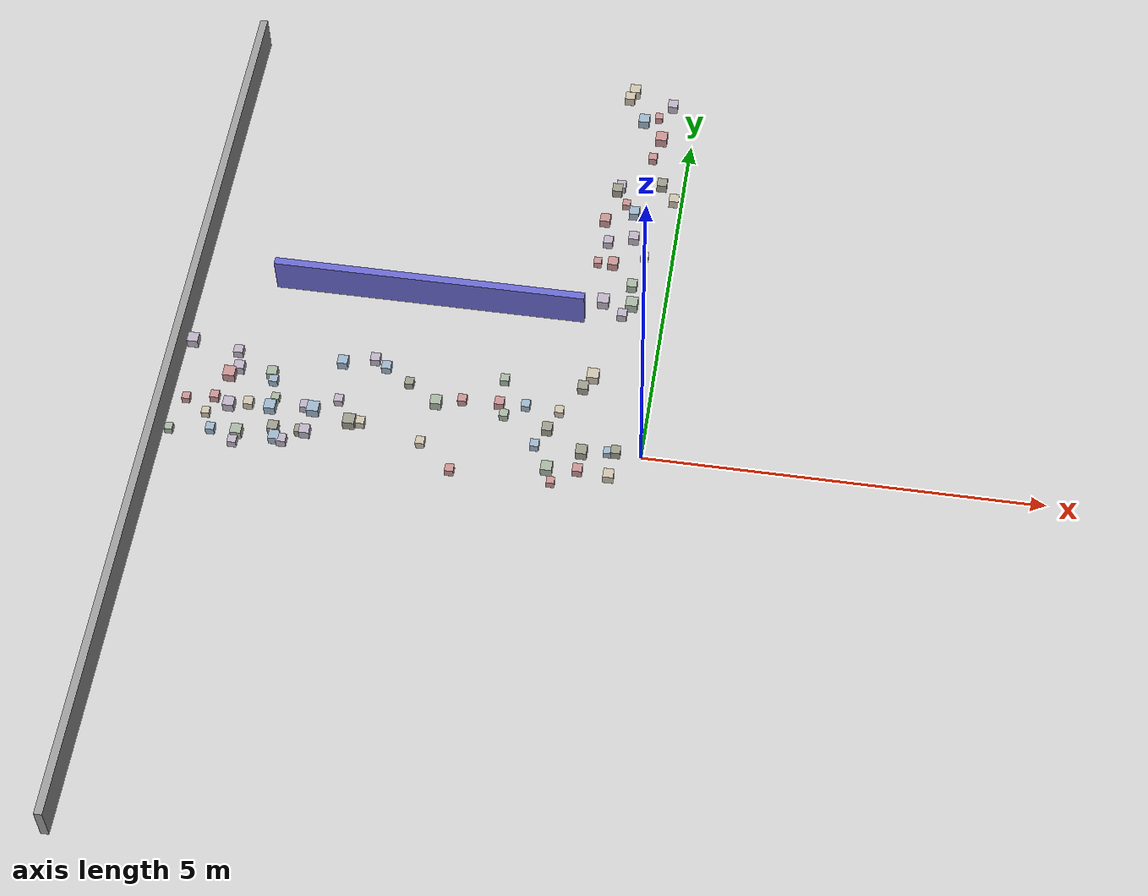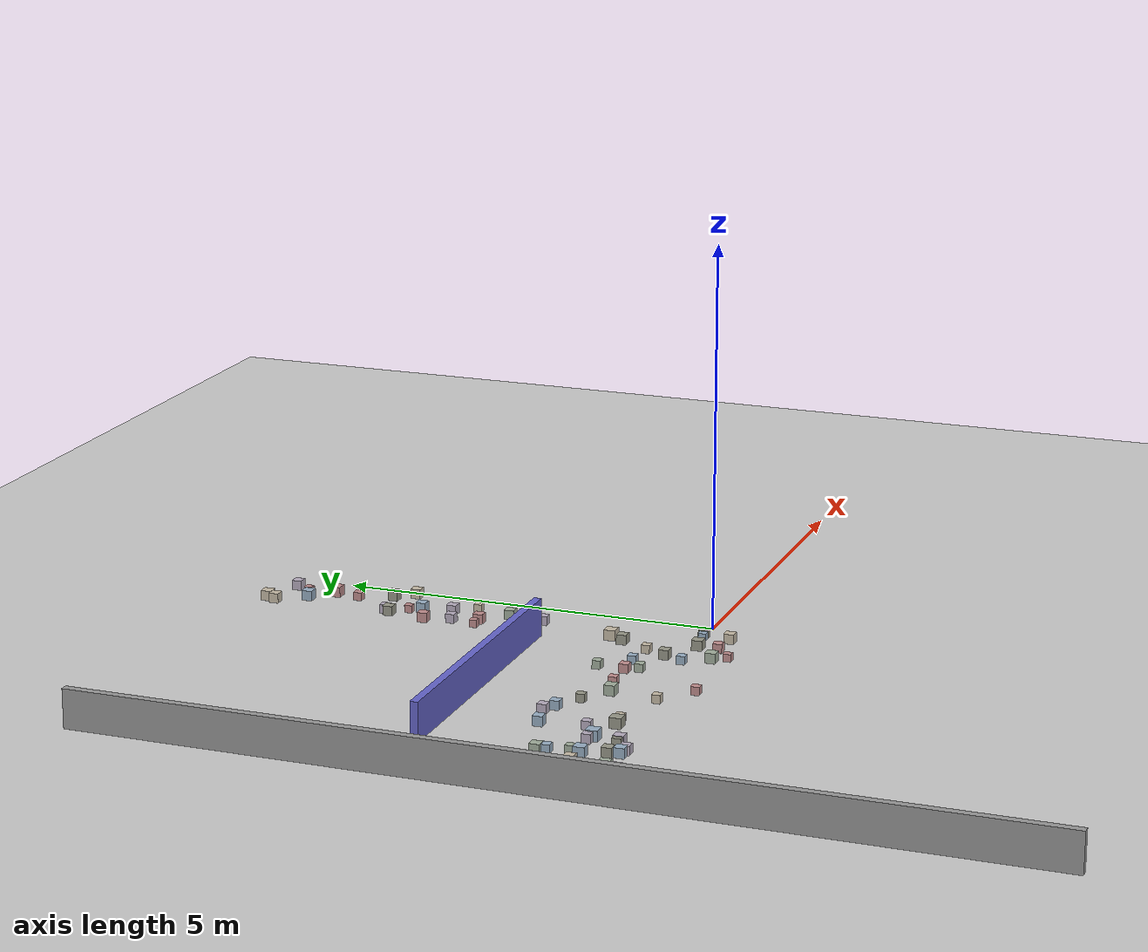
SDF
<sdf version="1.6">
 <world name="small_maze_world">
  <include><uri>model://ground_plane</uri></include>
  <include><uri>model://sun</uri></include>
  <model name="wall_west">
   <static>true</static>
   <pose>-6 0 0.25 0 0 0</pose>
   <link name="link">
    <collision name="collision"><geometry><box><size>0.1 12 0.5</size></box></geometry></collision>
    <visual name="visual">
     <geometry><box><size>0.1 12 0.5</size></box></geometry>
     <material><ambient>0.6 0.6 0.6 1</ambient></material>
    </visual>
   </link>
  </model>
  <model name="maze_wall_1">
   <static>true</static>
   <pose>-3 2 0.25 0 0 0</pose>
   <link name="link">
    <collision name="collision"><geometry><box><size>4 0.1 0.5</size></box></geometry></collision>
    <visual name="visual">
     <geometry><box><size>4 0.1 0.5</size></box></geometry>
     <material><ambient>0.4 0.4 0.8 1</ambient></material>
    </visual>
   </link>
  </model>
  <model name="box_1">
   <static>false</static>
   <pose>-0.76 2.9 0.05 0 0 0</pose>
   <link name="link">
    <inertial>
     <mass>0.2</mass>
     <inertia><ixx>0.001</ixx><iyy>0.001</iyy><izz>0.001</izz><ixy>0</ixy><ixz>0</ixz><iyz>0</iyz></inertia>
    </inertial>
    <collision name="collision"><geometry><box><size>0.13 0.13 0.13</size></box></geometry></collision>
    <visual name="visual">
     <geometry><box><size>0.13 0.13 0.13</size></box></geometry>
     <material><ambient>0.76 0.56 0.56 1</ambient><diffuse>0.76 0.56 0.56 1</diffuse></material>
    </visual>
   </link>
  </model>
  <model name="box_5">
   <static>false</static>
   <pose>-5.21 0.04 0.05 0 0 0</pose>
   <link name="link">
    <inertial>
     <mass>0.2</mass>
     <inertia><ixx>0.001</ixx><iyy>0.001</iyy><izz>0.001</izz><ixy>0</ixy><ixz>0</ixz><iyz>0</iyz></inertia>
    </inertial>
    <collision name="collision"><geometry><box><size>0.14 0.14 0.14</size></box></geometry></collision>
    <visual name="visual">
     <geometry><box><size>0.14 0.14 0.14</size></box></geometry>
     <material><ambient>0.72 0.68 0.75 1</ambient><diffuse>0.72 0.68 0.75 1</diffuse></material>
    </visual>
   </link>
  </model>
  <model name="box_6">
   <static>false</static>
   <pose>-0.36 -0.35 0.05 0 0 0</pose>
   <link name="link">
    <inertial>
     <mass>0.2</mass>
     <inertia><ixx>0.001</ixx><iyy>0.001</iyy><izz>0.001</izz><ixy>0</ixy><ixz>0</ixz><iyz>0</iyz></inertia>
    </inertial>
    <collision name="collision"><geometry><box><size>0.13 0.13 0.13</size></box></geometry></collision>
    <visual name="visual">
     <geometry><box><size>0.13 0.13 0.13</size></box></geometry>
     <material><ambient>0.78 0.74 0.66 1</ambient><diffuse>0.78 0.74 0.66 1</diffuse></material>
    </visual>
   </link>
  </model>
  <model name="box_17">
   <static>false</static>
   <pose>-1.85 0.89 0.05 0 0 0</pose>
   <link name="link">
    <inertial>
     <mass>0.2</mass>
     <inertia><ixx>0.001</ixx><iyy>0.001</iyy><izz>0.001</izz><ixy>0</ixy><ixz>0</ixz><iyz>0</iyz></inertia>
    </inertial>
    <collision name="collision"><geometry><box><size>0.11 0.11 0.11</size></box></geometry></collision>
    <visual name="visual">
     <geometry><box><size>0.11 0.11 0.11</size></box></geometry>
     <material><ambient>0.64 0.69 0.62 1</ambient><diffuse>0.64 0.69 0.62 1</diffuse></material>
    </visual>
   </link>
  </model>
  <model name="box_18">
   <static>false</static>
   <pose>-0.42 -0.01 0.05 0 0 0</pose>
   <link name="link">
    <inertial>
     <mass>0.2</mass>
     <inertia><ixx>0.001</ixx><iyy>0.001</iyy><izz>0.001</izz><ixy>0</ixy><ixz>0</ixz><iyz>0</iyz></inertia>
    </inertial>
    <collision name="collision"><geometry><box><size>0.1 0.1 0.1</size></box></geometry></collision>
    <visual name="visual">
     <geometry><box><size>0.1 0.1 0.1</size></box></geometry>
     <material><ambient>0.6 0.69 0.77 1</ambient><diffuse>0.6 0.69 0.77 1</diffuse></material>
    </visual>
   </link>
  </model>
  <model name="box_28">
   <static>false</static>
   <pose>-0.87 5.84 0.05 0 0 0</pose>
   <link name="link">
    <inertial>
     <mass>0.2</mass>
     <inertia><ixx>0.001</ixx><iyy>0.001</iyy><izz>0.001</izz><ixy>0</ixy><ixz>0</ixz><iyz>0</iyz></inertia>
    </inertial>
    <collision name="collision"><geometry><box><size>0.14 0.14 0.14</size></box></geometry></collision>
    <visual name="visual">
     <geometry><box><size>0.14 0.14 0.14</size></box></geometry>
     <material><ambient>0.78 0.74 0.66 1</ambient><diffuse>0.78 0.74 0.66 1</diffuse></material>
    </visual>
   </link>
  </model>
  <model name="box_30">
   <static>false</static>
   <pose>-4.26 0.14 0.05 0 0 0</pose>
   <link name="link">
    <inertial>
     <mass>0.2</mass>
     <inertia><ixx>0.001</ixx><iyy>0.001</iyy><izz>0.001</izz><ixy>0</ixy><ixz>0</ixz><iyz>0</iyz></inertia>
    </inertial>
    <collision name="collision"><geometry><box><size>0.12 0.12 0.12</size></box></geometry></collision>
    <visual name="visual">
     <geometry><box><size>0.12 0.12 0.12</size></box></geometry>
     <material><ambient>0.72 0.68 0.75 1</ambient><diffuse>0.72 0.68 0.75 1</diffuse></material>
    </visual>
   </link>
  </model>
  <model name="box_36">
   <static>false</static>
   <pose>-5.26 0.85 0.05 0 0 0</pose>
   <link name="link">
    <inertial>
     <mass>0.2</mass>
     <inertia><ixx>0.001</ixx><iyy>0.001</iyy><izz>0.001</izz><ixy>0</ixy><ixz>0</ixz><iyz>0</iyz></inertia>
    </inertial>
    <collision name="collision"><geometry><box><size>0.12 0.12 0.12</size></box></geometry></collision>
    <visual name="visual">
     <geometry><box><size>0.12 0.12 0.12</size></box></geometry>
     <material><ambient>0.72 0.68 0.75 1</ambient><diffuse>0.72 0.68 0.75 1</diffuse></material>
    </visual>
   </link>
  </model>
  <model name="box_42">
   <static>false</static>
   <pose>-5.03 -0.35 0.05 0 0 0</pose>
   <link name="link">
    <inertial>
     <mass>0.2</mass>
     <inertia><ixx>0.001</ixx><iyy>0.001</iyy><izz>0.001</izz><ixy>0</ixy><ixz>0</ixz><iyz>0</iyz></inertia>
    </inertial>
    <collision name="collision"><geometry><box><size>0.14 0.14 0.14</size></box></geometry></collision>
    <visual name="visual">
     <geometry><box><size>0.14 0.14 0.14</size></box></geometry>
     <material><ambient>0.64 0.69 0.62 1</ambient><diffuse>0.64 0.69 0.62 1</diffuse></material>
    </visual>
   </link>
  </model>
  <model name="box_43">
   <static>false</static>
   <pose>-0.48 4.71 0.05 0 0 0</pose>
   <link name="link">
    <inertial>
     <mass>0.2</mass>
     <inertia><ixx>0.001</ixx><iyy>0.001</iyy><izz>0.001</izz><ixy>0</ixy><ixz>0</ixz><iyz>0</iyz></inertia>
    </inertial>
    <collision name="collision"><geometry><box><size>0.11 0.11 0.11</size></box></geometry></collision>
    <visual name="visual">
     <geometry><box><size>0.11 0.11 0.11</size></box></geometry>
     <material><ambient>0.76 0.56 0.56 1</ambient><diffuse>0.76 0.56 0.56 1</diffuse></material>
    </visual>
   </link>
  </model>
  <model name="box_51">
   <static>false</static>
   <pose>-4.97 0.09 0.05 0 0 0</pose>
   <link name="link">
    <inertial>
     <mass>0.2</mass>
     <inertia><ixx>0.001</ixx><iyy>0.001</iyy><izz>0.001</izz><ixy>0</ixy><ixz>0</ixz><iyz>0</iyz></inertia>
    </inertial>
    <collision name="collision"><geometry><box><size>0.12 0.12 0.12</size></box></geometry></collision>
    <visual name="visual">
     <geometry><box><size>0.12 0.12 0.12</size></box></geometry>
     <material><ambient>0.78 0.74 0.66 1</ambient><diffuse>0.78 0.74 0.66 1</diffuse></material>
    </visual>
   </link>
  </model>
  <model name="box_52">
   <static>false</static>
   <pose>-1.78 0.36 0.05 0 0 0</pose>
   <link name="link">
    <inertial>
     <mass>0.2</mass>
     <inertia><ixx>0.001</ixx><iyy>0.001</iyy><izz>0.001</izz><ixy>0</ixy><ixz>0</ixz><iyz>0</iyz></inertia>
    </inertial>
    <collision name="collision"><geometry><box><size>0.11 0.11 0.11</size></box></geometry></collision>
    <visual name="visual">
     <geometry><box><size>0.11 0.11 0.11</size></box></geometry>
     <material><ambient>0.64 0.69 0.62 1</ambient><diffuse>0.64 0.69 0.62 1</diffuse></material>
    </visual>
   </link>
  </model>
  <model name="box_58">
   <static>false</static>
   <pose>-3.03 0.67 0.05 0 0 0</pose>
   <link name="link">
    <inertial>
     <mass>0.2</mass>
     <inertia><ixx>0.001</ixx><iyy>0.001</iyy><izz>0.001</izz><ixy>0</ixy><ixz>0</ixz><iyz>0</iyz></inertia>
    </inertial>
    <collision name="collision"><geometry><box><size>0.11 0.11 0.11</size></box></geometry></collision>
    <visual name="visual">
     <geometry><box><size>0.11 0.11 0.11</size></box></geometry>
     <material><ambient>0.6 0.6 0.54 1</ambient><diffuse>0.6 0.6 0.54 1</diffuse></material>
    </visual>
   </link>
  </model>
  <model name="box_62">
   <static>false</static>
   <pose>-5.87 -0.42 0.05 0 0 0</pose>
   <link name="link">
    <inertial>
     <mass>0.2</mass>
     <inertia><ixx>0.001</ixx><iyy>0.001</iyy><izz>0.001</izz><ixy>0</ixy><ixz>0</ixz><iyz>0</iyz></inertia>
    </inertial>
    <collision name="collision"><geometry><box><size>0.1 0.1 0.1</size></box></geometry></collision>
    <visual name="visual">
     <geometry><box><size>0.1 0.1 0.1</size></box></geometry>
     <material><ambient>0.64 0.69 0.62 1</ambient><diffuse>0.64 0.69 0.62 1</diffuse></material>
    </visual>
   </link>
  </model>
  <model name="box_69">
   <static>false</static>
   <pose>-4.77 0.58 0.05 0 0 0</pose>
   <link name="link">
    <inertial>
     <mass>0.2</mass>
     <inertia><ixx>0.001</ixx><iyy>0.001</iyy><izz>0.001</izz><ixy>0</ixy><ixz>0</ixz><iyz>0</iyz></inertia>
    </inertial>
    <collision name="collision"><geometry><box><size>0.13 0.13 0.13</size></box></geometry></collision>
    <visual name="visual">
     <geometry><box><size>0.13 0.13 0.13</size></box></geometry>
     <material><ambient>0.64 0.69 0.62 1</ambient><diffuse>0.64 0.69 0.62 1</diffuse></material>
    </visual>
   </link>
  </model>
  <model name="box_72">
   <static>false</static>
   <pose>-3.52 0.97 0.05 0 0 0</pose>
   <link name="link">
    <inertial>
     <mass>0.2</mass>
     <inertia><ixx>0.001</ixx><iyy>0.001</iyy><izz>0.001</izz><ixy>0</ixy><ixz>0</ixz><iyz>0</iyz></inertia>
    </inertial>
    <collision name="collision"><geometry><box><size>0.12 0.12 0.12</size></box></geometry></collision>
    <visual name="visual">
     <geometry><box><size>0.12 0.12 0.12</size></box></geometry>
     <material><ambient>0.72 0.68 0.75 1</ambient><diffuse>0.72 0.68 0.75 1</diffuse></material>
    </visual>
   </link>
  </model>
  <model name="box_74">
   <static>false</static>
   <pose>-3.86 0.29 0.05 0 0 0</pose>
   <link name="link">
    <inertial>
     <mass>0.2</mass>
     <inertia><ixx>0.001</ixx><iyy>0.001</iyy><izz>0.001</izz><ixy>0</ixy><ixz>0</ixz><iyz>0</iyz></inertia>
    </inertial>
    <collision name="collision"><geometry><box><size>0.11 0.11 0.11</size></box></geometry></collision>
    <visual name="visual">
     <geometry><box><size>0.11 0.11 0.11</size></box></geometry>
     <material><ambient>0.72 0.68 0.75 1</ambient><diffuse>0.72 0.68 0.75 1</diffuse></material>
    </visual>
   </link>
  </model>
  <model name="box_78">
   <static>false</static>
   <pose>-0.72 3.89 0.05 0 0 0</pose>
   <link name="link">
    <inertial>
     <mass>0.2</mass>
     <inertia><ixx>0.001</ixx><iyy>0.001</iyy><izz>0.001</izz><ixy>0</ixy><ixz>0</ixz><iyz>0</iyz></inertia>
    </inertial>
    <collision name="collision"><geometry><box><size>0.1 0.1 0.1</size></box></geometry></collision>
    <visual name="visual">
     <geometry><box><size>0.1 0.1 0.1</size></box></geometry>
     <material><ambient>0.76 0.56 0.56 1</ambient><diffuse>0.76 0.56 0.56 1</diffuse></material>
    </visual>
   </link>
  </model>
  <model name="box_81">
   <static>false</static>
   <pose>-0.68 5.34 0.05 0 0 0</pose>
   <link name="link">
    <inertial>
     <mass>0.2</mass>
     <inertia><ixx>0.001</ixx><iyy>0.001</iyy><izz>0.001</izz><ixy>0</ixy><ixz>0</ixz><iyz>0</iyz></inertia>
    </inertial>
    <collision name="collision"><geometry><box><size>0.14 0.14 0.14</size></box></geometry></collision>
    <visual name="visual">
     <geometry><box><size>0.14 0.14 0.14</size></box></geometry>
     <material><ambient>0.6 0.69 0.77 1</ambient><diffuse>0.6 0.69 0.77 1</diffuse></material>
    </visual>
   </link>
  </model>
  <model name="box_85">
   <static>false</static>
   <pose>-0.86 0.91 0.05 0 0 0</pose>
   <link name="link">
    <inertial>
     <mass>0.2</mass>
     <inertia><ixx>0.001</ixx><iyy>0.001</iyy><izz>0.001</izz><ixy>0</ixy><ixz>0</ixz><iyz>0</iyz></inertia>
    </inertial>
    <collision name="collision"><geometry><box><size>0.13 0.13 0.13</size></box></geometry></collision>
    <visual name="visual">
     <geometry><box><size>0.13 0.13 0.13</size></box></geometry>
     <material><ambient>0.6 0.6 0.54 1</ambient><diffuse>0.6 0.6 0.54 1</diffuse></material>
    </visual>
   </link>
  </model>
  <model name="box_89">
   <static>false</static>
   <pose>-0.92 5.71 0.05 0 0 0</pose>
   <link name="link">
    <inertial>
     <mass>0.2</mass>
     <inertia><ixx>0.001</ixx><iyy>0.001</iyy><izz>0.001</izz><ixy>0</ixy><ixz>0</ixz><iyz>0</iyz></inertia>
    </inertial>
    <collision name="collision"><geometry><box><size>0.13 0.13 0.13</size></box></geometry></collision>
    <visual name="visual">
     <geometry><box><size>0.13 0.13 0.13</size></box></geometry>
     <material><ambient>0.78 0.74 0.66 1</ambient><diffuse>0.78 0.74 0.66 1</diffuse></material>
    </visual>
   </link>
  </model>
  <model name="box_94">
   <static>false</static>
   <pose>-0.11 4.04 0.05 0 0 0</pose>
   <link name="link">
    <inertial>
     <mass>0.2</mass>
     <inertia><ixx>0.001</ixx><iyy>0.001</iyy><izz>0.001</izz><ixy>0</ixy><ixz>0</ixz><iyz>0</iyz></inertia>
    </inertial>
    <collision name="collision"><geometry><box><size>0.13 0.13 0.13</size></box></geometry></collision>
    <visual name="visual">
     <geometry><box><size>0.13 0.13 0.13</size></box></geometry>
     <material><ambient>0.78 0.74 0.66 1</ambient><diffuse>0.78 0.74 0.66 1</diffuse></material>
    </visual>
   </link>
  </model>
  <model name="box_96">
   <static>false</static>
   <pose>-3.53 -0.0 0.05 0 0 0</pose>
   <link name="link">
    <inertial>
     <mass>0.2</mass>
     <inertia><ixx>0.001</ixx><iyy>0.001</iyy><izz>0.001</izz><ixy>0</ixy><ixz>0</ixz><iyz>0</iyz></inertia>
    </inertial>
    <collision name="collision"><geometry><box><size>0.11 0.11 0.11</size></box></geometry></collision>
    <visual name="visual">
     <geometry><box><size>0.11 0.11 0.11</size></box></geometry>
     <material><ambient>0.78 0.74 0.66 1</ambient><diffuse>0.78 0.74 0.66 1</diffuse></material>
    </visual>
   </link>
  </model>
  <model name="box_100">
   <static>false</static>
   <pose>-2.31 -0.54 0.05 0 0 0</pose>
   <link name="link">
    <inertial>
     <mass>0.2</mass>
     <inertia><ixx>0.001</ixx><iyy>0.001</iyy><izz>0.001</izz><ixy>0</ixy><ixz>0</ixz><iyz>0</iyz></inertia>
    </inertial>
    <collision name="collision"><geometry><box><size>0.11 0.11 0.11</size></box></geometry></collision>
    <visual name="visual">
     <geometry><box><size>0.11 0.11 0.11</size></box></geometry>
     <material><ambient>0.76 0.56 0.56 1</ambient><diffuse>0.76 0.56 0.56 1</diffuse></material>
    </visual>
   </link>
  </model>
  <model name="box_102">
   <static>false</static>
   <pose>-3.92 0.87 0.05 0 0 0</pose>
   <link name="link">
    <inertial>
     <mass>0.2</mass>
     <inertia><ixx>0.001</ixx><iyy>0.001</iyy><izz>0.001</izz><ixy>0</ixy><ixz>0</ixz><iyz>0</iyz></inertia>
    </inertial>
    <collision name="collision"><geometry><box><size>0.13 0.13 0.13</size></box></geometry></collision>
    <visual name="visual">
     <geometry><box><size>0.13 0.13 0.13</size></box></geometry>
     <material><ambient>0.6 0.69 0.77 1</ambient><diffuse>0.6 0.69 0.77 1</diffuse></material>
    </visual>
   </link>
  </model>
  <model name="box_104">
   <static>false</static>
   <pose>-0.43 2.28 0.05 0 0 0</pose>
   <link name="link">
    <inertial>
     <mass>0.2</mass>
     <inertia><ixx>0.001</ixx><iyy>0.001</iyy><izz>0.001</izz><ixy>0</ixy><ixz>0</ixz><iyz>0</iyz></inertia>
    </inertial>
    <collision name="collision"><geometry><box><size>0.15 0.15 0.15</size></box></geometry></collision>
    <visual name="visual">
     <geometry><box><size>0.15 0.15 0.15</size></box></geometry>
     <material><ambient>0.64 0.69 0.62 1</ambient><diffuse>0.64 0.69 0.62 1</diffuse></material>
    </visual>
   </link>
  </model>
  <model name="box_113">
   <static>false</static>
   <pose>-0.55 3.35 0.05 0 0 0</pose>
   <link name="link">
    <inertial>
     <mass>0.2</mass>
     <inertia><ixx>0.001</ixx><iyy>0.001</iyy><izz>0.001</izz><ixy>0</ixy><ixz>0</ixz><iyz>0</iyz></inertia>
    </inertial>
    <collision name="collision"><geometry><box><size>0.13 0.13 0.13</size></box></geometry></collision>
    <visual name="visual">
     <geometry><box><size>0.13 0.13 0.13</size></box></geometry>
     <material><ambient>0.72 0.68 0.75 1</ambient><diffuse>0.72 0.68 0.75 1</diffuse></material>
    </visual>
   </link>
  </model>
  <model name="box_114">
   <static>false</static>
   <pose>-5.3 0.49 0.05 0 0 0</pose>
   <link name="link">
    <inertial>
     <mass>0.2</mass>
     <inertia><ixx>0.001</ixx><iyy>0.001</iyy><izz>0.001</izz><ixy>0</ixy><ixz>0</ixz><iyz>0</iyz></inertia>
    </inertial>
    <collision name="collision"><geometry><box><size>0.15 0.15 0.15</size></box></geometry></collision>
    <visual name="visual">
     <geometry><box><size>0.15 0.15 0.15</size></box></geometry>
     <material><ambient>0.76 0.56 0.56 1</ambient><diffuse>0.76 0.56 0.56 1</diffuse></material>
    </visual>
   </link>
  </model>
  <model name="box_120">
   <static>false</static>
   <pose>-0.87 4.11 0.05 0 0 0</pose>
   <link name="link">
    <inertial>
     <mass>0.2</mass>
     <inertia><ixx>0.001</ixx><iyy>0.001</iyy><izz>0.001</izz><ixy>0</ixy><ixz>0</ixz><iyz>0</iyz></inertia>
    </inertial>
    <collision name="collision"><geometry><box><size>0.13 0.13 0.13</size></box></geometry></collision>
    <visual name="visual">
     <geometry><box><size>0.13 0.13 0.13</size></box></geometry>
     <material><ambient>0.6 0.6 0.54 1</ambient><diffuse>0.6 0.6 0.54 1</diffuse></material>
    </visual>
   </link>
  </model>
  <model name="box_137">
   <static>false</static>
   <pose>-0.8 2.28 0.05 0 0 0</pose>
   <link name="link">
    <inertial>
     <mass>0.2</mass>
     <inertia><ixx>0.001</ixx><iyy>0.001</iyy><izz>0.001</izz><ixy>0</ixy><ixz>0</ixz><iyz>0</iyz></inertia>
    </inertial>
    <collision name="collision"><geometry><box><size>0.15 0.15 0.15</size></box></geometry></collision>
    <visual name="visual">
     <geometry><box><size>0.15 0.15 0.15</size></box></geometry>
     <material><ambient>0.72 0.68 0.75 1</ambient><diffuse>0.72 0.68 0.75 1</diffuse></material>
    </visual>
   </link>
  </model>
  <model name="box_142">
   <static>false</static>
   <pose>-0.53 2.1 0.05 0 0 0</pose>
   <link name="link">
    <inertial>
     <mass>0.2</mass>
     <inertia><ixx>0.001</ixx><iyy>0.001</iyy><izz>0.001</izz><ixy>0</ixy><ixz>0</ixz><iyz>0</iyz></inertia>
    </inertial>
    <collision name="collision"><geometry><box><size>0.12 0.12 0.12</size></box></geometry></collision>
    <visual name="visual">
     <geometry><box><size>0.12 0.12 0.12</size></box></geometry>
     <material><ambient>0.72 0.68 0.75 1</ambient><diffuse>0.72 0.68 0.75 1</diffuse></material>
    </visual>
   </link>
  </model>
  <model name="box_146">
   <static>false</static>
   <pose>-4.45 -0.4 0.05 0 0 0</pose>
   <link name="link">
    <inertial>
     <mass>0.2</mass>
     <inertia><ixx>0.001</ixx><iyy>0.001</iyy><izz>0.001</izz><ixy>0</ixy><ixz>0</ixz><iyz>0</iyz></inertia>
    </inertial>
    <collision name="collision"><geometry><box><size>0.12 0.12 0.12</size></box></geometry></collision>
    <visual name="visual">
     <geometry><box><size>0.12 0.12 0.12</size></box></geometry>
     <material><ambient>0.72 0.68 0.75 1</ambient><diffuse>0.72 0.68 0.75 1</diffuse></material>
    </visual>
   </link>
  </model>
  <model name="box_152">
   <static>false</static>
   <pose>-1.53 0.54 0.05 0 0 0</pose>
   <link name="link">
    <inertial>
     <mass>0.2</mass>
     <inertia><ixx>0.001</ixx><iyy>0.001</iyy><izz>0.001</izz><ixy>0</ixy><ixz>0</ixz><iyz>0</iyz></inertia>
    </inertial>
    <collision name="collision"><geometry><box><size>0.11 0.11 0.11</size></box></geometry></collision>
    <visual name="visual">
     <geometry><box><size>0.11 0.11 0.11</size></box></geometry>
     <material><ambient>0.6 0.69 0.77 1</ambient><diffuse>0.6 0.69 0.77 1</diffuse></material>
    </visual>
   </link>
  </model>
  <model name="box_155">
   <static>false</static>
   <pose>-5.36 -0.35 0.05 0 0 0</pose>
   <link name="link">
    <inertial>
     <mass>0.2</mass>
     <inertia><ixx>0.001</ixx><iyy>0.001</iyy><izz>0.001</izz><ixy>0</ixy><ixz>0</ixz><iyz>0</iyz></inertia>
    </inertial>
    <collision name="collision"><geometry><box><size>0.11 0.11 0.11</size></box></geometry></collision>
    <visual name="visual">
     <geometry><box><size>0.11 0.11 0.11</size></box></geometry>
     <material><ambient>0.6 0.69 0.77 1</ambient><diffuse>0.6 0.69 0.77 1</diffuse></material>
    </visual>
   </link>
  </model>
  <model name="box_172">
   <static>false</static>
   <pose>-5.47 -0.12 0.05 0 0 0</pose>
   <link name="link">
    <inertial>
     <mass>0.2</mass>
     <inertia><ixx>0.001</ixx><iyy>0.001</iyy><izz>0.001</izz><ixy>0</ixy><ixz>0</ixz><iyz>0</iyz></inertia>
    </inertial>
    <collision name="collision"><geometry><box><size>0.1 0.1 0.1</size></box></geometry></collision>
    <visual name="visual">
     <geometry><box><size>0.1 0.1 0.1</size></box></geometry>
     <material><ambient>0.78 0.74 0.66 1</ambient><diffuse>0.78 0.74 0.66 1</diffuse></material>
    </visual>
   </link>
  </model>
  <model name="box_183">
   <static>false</static>
   <pose>-5.87 0.94 0.05 0 0 0</pose>
   <link name="link">
    <inertial>
     <mass>0.2</mass>
     <inertia><ixx>0.001</ixx><iyy>0.001</iyy><izz>0.001</izz><ixy>0</ixy><ixz>0</ixz><iyz>0</iyz></inertia>
    </inertial>
    <collision name="collision"><geometry><box><size>0.14 0.14 0.14</size></box></geometry></collision>
    <visual name="visual">
     <geometry><box><size>0.14 0.14 0.14</size></box></geometry>
     <material><ambient>0.72 0.68 0.75 1</ambient><diffuse>0.72 0.68 0.75 1</diffuse></material>
    </visual>
   </link>
  </model>
  <model name="box_186">
   <static>false</static>
   <pose>-0.37 3.06 0.05 0 0 0</pose>
   <link name="link">
    <inertial>
     <mass>0.2</mass>
     <inertia><ixx>0.001</ixx><iyy>0.001</iyy><izz>0.001</izz><ixy>0</ixy><ixz>0</ixz><iyz>0</iyz></inertia>
    </inertial>
    <collision name="collision"><geometry><box><size>0.1 0.1 0.1</size></box></geometry></collision>
    <visual name="visual">
     <geometry><box><size>0.1 0.1 0.1</size></box></geometry>
     <material><ambient>0.78 0.74 0.66 1</ambient><diffuse>0.78 0.74 0.66 1</diffuse></material>
    </visual>
   </link>
  </model>
  <model name="box_188">
   <static>false</static>
   <pose>-1.21 0.23 0.05 0 0 0</pose>
   <link name="link">
    <inertial>
     <mass>0.2</mass>
     <inertia><ixx>0.001</ixx><iyy>0.001</iyy><izz>0.001</izz><ixy>0</ixy><ixz>0</ixz><iyz>0</iyz></inertia>
    </inertial>
    <collision name="collision"><geometry><box><size>0.13 0.13 0.13</size></box></geometry></collision>
    <visual name="visual">
     <geometry><box><size>0.13 0.13 0.13</size></box></geometry>
     <material><ambient>0.6 0.6 0.54 1</ambient><diffuse>0.6 0.6 0.54 1</diffuse></material>
    </visual>
   </link>
  </model>
  <model name="box_189">
   <static>false</static>
   <pose>-5.41 0.13 0.05 0 0 0</pose>
   <link name="link">
    <inertial>
     <mass>0.2</mass>
     <inertia><ixx>0.001</ixx><iyy>0.001</iyy><izz>0.001</izz><ixy>0</ixy><ixz>0</ixz><iyz>0</iyz></inertia>
    </inertial>
    <collision name="collision"><geometry><box><size>0.11 0.11 0.11</size></box></geometry></collision>
    <visual name="visual">
     <geometry><box><size>0.11 0.11 0.11</size></box></geometry>
     <material><ambient>0.76 0.56 0.56 1</ambient><diffuse>0.76 0.56 0.56 1</diffuse></material>
    </visual>
   </link>
  </model>
  <model name="box_192">
   <static>false</static>
   <pose>-1.05 -0.54 0.05 0 0 0</pose>
   <link name="link">
    <inertial>
     <mass>0.2</mass>
     <inertia><ixx>0.001</ixx><iyy>0.001</iyy><izz>0.001</izz><ixy>0</ixy><ixz>0</ixz><iyz>0</iyz></inertia>
    </inertial>
    <collision name="collision"><geometry><box><size>0.1 0.1 0.1</size></box></geometry></collision>
    <visual name="visual">
     <geometry><box><size>0.1 0.1 0.1</size></box></geometry>
     <material><ambient>0.76 0.56 0.56 1</ambient><diffuse>0.76 0.56 0.56 1</diffuse></material>
    </visual>
   </link>
  </model>
  <model name="box_203">
   <static>false</static>
   <pose>-0.74 -0.05 0.05 0 0 0</pose>
   <link name="link">
    <inertial>
     <mass>0.2</mass>
     <inertia><ixx>0.001</ixx><iyy>0.001</iyy><izz>0.001</izz><ixy>0</ixy><ixz>0</ixz><iyz>0</iyz></inertia>
    </inertial>
    <collision name="collision"><geometry><box><size>0.14 0.14 0.14</size></box></geometry></collision>
    <visual name="visual">
     <geometry><box><size>0.14 0.14 0.14</size></box></geometry>
     <material><ambient>0.6 0.6 0.54 1</ambient><diffuse>0.6 0.6 0.54 1</diffuse></material>
    </visual>
   </link>
  </model>
  <model name="box_206">
   <static>false</static>
   <pose>-0.6 3.76 0.05 0 0 0</pose>
   <link name="link">
    <inertial>
     <mass>0.2</mass>
     <inertia><ixx>0.001</ixx><iyy>0.001</iyy><izz>0.001</izz><ixy>0</ixy><ixz>0</ixz><iyz>0</iyz></inertia>
    </inertial>
    <collision name="collision"><geometry><box><size>0.13 0.13 0.13</size></box></geometry></collision>
    <visual name="visual">
     <geometry><box><size>0.13 0.13 0.13</size></box></geometry>
     <material><ambient>0.6 0.69 0.77 1</ambient><diffuse>0.6 0.69 0.77 1</diffuse></material>
    </visual>
   </link>
  </model>
  <model name="box_210">
   <static>false</static>
   <pose>-2.33 0.51 0.05 0 0 0</pose>
   <link name="link">
    <inertial>
     <mass>0.2</mass>
     <inertia><ixx>0.001</ixx><iyy>0.001</iyy><izz>0.001</izz><ixy>0</ixy><ixz>0</ixz><iyz>0</iyz></inertia>
    </inertial>
    <collision name="collision"><geometry><box><size>0.11 0.11 0.11</size></box></geometry></collision>
    <visual name="visual">
     <geometry><box><size>0.11 0.11 0.11</size></box></geometry>
     <material><ambient>0.76 0.56 0.56 1</ambient><diffuse>0.76 0.56 0.56 1</diffuse></material>
    </visual>
   </link>
  </model>
  <model name="box_219">
   <static>false</static>
   <pose>-1.86 0.53 0.05 0 0 0</pose>
   <link name="link">
    <inertial>
     <mass>0.2</mass>
     <inertia><ixx>0.001</ixx><iyy>0.001</iyy><izz>0.001</izz><ixy>0</ixy><ixz>0</ixz><iyz>0</iyz></inertia>
    </inertial>
    <collision name="collision"><geometry><box><size>0.12 0.12 0.12</size></box></geometry></collision>
    <visual name="visual">
     <geometry><box><size>0.12 0.12 0.12</size></box></geometry>
     <material><ambient>0.76 0.56 0.56 1</ambient><diffuse>0.76 0.56 0.56 1</diffuse></material>
    </visual>
   </link>
  </model>
  <model name="box_228">
   <static>false</static>
   <pose>-5.76 0.06 0.05 0 0 0</pose>
   <link name="link">
    <inertial>
     <mass>0.2</mass>
     <inertia><ixx>0.001</ixx><iyy>0.001</iyy><izz>0.001</izz><ixy>0</ixy><ixz>0</ixz><iyz>0</iyz></inertia>
    </inertial>
    <collision name="collision"><geometry><box><size>0.1 0.1 0.1</size></box></geometry></collision>
    <visual name="visual">
     <geometry><box><size>0.1 0.1 0.1</size></box></geometry>
     <material><ambient>0.76 0.56 0.56 1</ambient><diffuse>0.76 0.56 0.56 1</diffuse></material>
    </visual>
   </link>
  </model>
  <model name="box_233">
   <static>false</static>
   <pose>-4.69 0.07 0.05 0 0 0</pose>
   <link name="link">
    <inertial>
     <mass>0.2</mass>
     <inertia><ixx>0.001</ixx><iyy>0.001</iyy><izz>0.001</izz><ixy>0</ixy><ixz>0</ixz><iyz>0</iyz></inertia>
    </inertial>
    <collision name="collision"><geometry><box><size>0.14 0.14 0.14</size></box></geometry></collision>
    <visual name="visual">
     <geometry><box><size>0.14 0.14 0.14</size></box></geometry>
     <material><ambient>0.6 0.69 0.77 1</ambient><diffuse>0.6 0.69 0.77 1</diffuse></material>
    </visual>
   </link>
  </model>
  <model name="box_238">
   <static>false</static>
   <pose>-0.96 3.59 0.05 0 0 0</pose>
   <link name="link">
    <inertial>
     <mass>0.2</mass>
     <inertia><ixx>0.001</ixx><iyy>0.001</iyy><izz>0.001</izz><ixy>0</ixy><ixz>0</ixz><iyz>0</iyz></inertia>
    </inertial>
    <collision name="collision"><geometry><box><size>0.13 0.13 0.13</size></box></geometry></collision>
    <visual name="visual">
     <geometry><box><size>0.13 0.13 0.13</size></box></geometry>
     <material><ambient>0.76 0.56 0.56 1</ambient><diffuse>0.76 0.56 0.56 1</diffuse></material>
    </visual>
   </link>
  </model>
  <model name="box_244">
   <static>false</static>
   <pose>-0.3 4.28 0.05 0 0 0</pose>
   <link name="link">
    <inertial>
     <mass>0.2</mass>
     <inertia><ixx>0.001</ixx><iyy>0.001</iyy><izz>0.001</izz><ixy>0</ixy><ixz>0</ixz><iyz>0</iyz></inertia>
    </inertial>
    <collision name="collision"><geometry><box><size>0.13 0.13 0.13</size></box></geometry></collision>
    <visual name="visual">
     <geometry><box><size>0.13 0.13 0.13</size></box></geometry>
     <material><ambient>0.6 0.6 0.54 1</ambient><diffuse>0.6 0.6 0.54 1</diffuse></material>
    </visual>
   </link>
  </model>
  <model name="box_246">
   <static>false</static>
   <pose>-2.74 -0.19 0.05 0 0 0</pose>
   <link name="link">
    <inertial>
     <mass>0.2</mass>
     <inertia><ixx>0.001</ixx><iyy>0.001</iyy><izz>0.001</izz><ixy>0</ixy><ixz>0</ixz><iyz>0</iyz></inertia>
    </inertial>
    <collision name="collision"><geometry><box><size>0.11 0.11 0.11</size></box></geometry></collision>
    <visual name="visual">
     <geometry><box><size>0.11 0.11 0.11</size></box></geometry>
     <material><ambient>0.78 0.74 0.66 1</ambient><diffuse>0.78 0.74 0.66 1</diffuse></material>
    </visual>
   </link>
  </model>
  <model name="box_252">
   <static>false</static>
   <pose>-4.26 -0.23 0.05 0 0 0</pose>
   <link name="link">
    <inertial>
     <mass>0.2</mass>
     <inertia><ixx>0.001</ixx><iyy>0.001</iyy><izz>0.001</izz><ixy>0</ixy><ixz>0</ixz><iyz>0</iyz></inertia>
    </inertial>
    <collision name="collision"><geometry><box><size>0.11 0.11 0.11</size></box></geometry></collision>
    <visual name="visual">
     <geometry><box><size>0.11 0.11 0.11</size></box></geometry>
     <material><ambient>0.6 0.6 0.54 1</ambient><diffuse>0.6 0.6 0.54 1</diffuse></material>
    </visual>
   </link>
  </model>
  <model name="box_255">
   <static>false</static>
   <pose>-0.33 5.65 0.05 0 0 0</pose>
   <link name="link">
    <inertial>
     <mass>0.2</mass>
     <inertia><ixx>0.001</ixx><iyy>0.001</iyy><izz>0.001</izz><ixy>0</ixy><ixz>0</ixz><iyz>0</iyz></inertia>
    </inertial>
    <collision name="collision"><geometry><box><size>0.13 0.13 0.13</size></box></geometry></collision>
    <visual name="visual">
     <geometry><box><size>0.13 0.13 0.13</size></box></geometry>
     <material><ambient>0.72 0.68 0.75 1</ambient><diffuse>0.72 0.68 0.75 1</diffuse></material>
    </visual>
   </link>
  </model>
  <model name="box_259">
   <static>false</static>
   <pose>-4.19 -0.23 0.05 0 0 0</pose>
   <link name="link">
    <inertial>
     <mass>0.2</mass>
     <inertia><ixx>0.001</ixx><iyy>0.001</iyy><izz>0.001</izz><ixy>0</ixy><ixz>0</ixz><iyz>0</iyz></inertia>
    </inertial>
    <collision name="collision"><geometry><box><size>0.13 0.13 0.13</size></box></geometry></collision>
    <visual name="visual">
     <geometry><box><size>0.13 0.13 0.13</size></box></geometry>
     <material><ambient>0.72 0.68 0.75 1</ambient><diffuse>0.72 0.68 0.75 1</diffuse></material>
    </visual>
   </link>
  </model>
  <model name="box_263">
   <static>false</static>
   <pose>-0.96 2.89 0.05 0 0 0</pose>
   <link name="link">
    <inertial>
     <mass>0.2</mass>
     <inertia><ixx>0.001</ixx><iyy>0.001</iyy><izz>0.001</izz><ixy>0</ixy><ixz>0</ixz><iyz>0</iyz></inertia>
    </inertial>
    <collision name="collision"><geometry><box><size>0.1 0.1 0.1</size></box></geometry></collision>
    <visual name="visual">
     <geometry><box><size>0.1 0.1 0.1</size></box></geometry>
     <material><ambient>0.76 0.56 0.56 1</ambient><diffuse>0.76 0.56 0.56 1</diffuse></material>
    </visual>
   </link>
  </model>
  <model name="box_264">
   <static>false</static>
   <pose>-1.1 0.51 0.05 0 0 0</pose>
   <link name="link">
    <inertial>
     <mass>0.2</mass>
     <inertia><ixx>0.001</ixx><iyy>0.001</iyy><izz>0.001</izz><ixy>0</ixy><ixz>0</ixz><iyz>0</iyz></inertia>
    </inertial>
    <collision name="collision"><geometry><box><size>0.11 0.11 0.11</size></box></geometry></collision>
    <visual name="visual">
     <geometry><box><size>0.11 0.11 0.11</size></box></geometry>
     <material><ambient>0.78 0.74 0.66 1</ambient><diffuse>0.78 0.74 0.66 1</diffuse></material>
    </visual>
   </link>
  </model>
  <model name="box_267">
   <static>false</static>
   <pose>-0.87 3.24 0.05 0 0 0</pose>
   <link name="link">
    <inertial>
     <mass>0.2</mass>
     <inertia><ixx>0.001</ixx><iyy>0.001</iyy><izz>0.001</izz><ixy>0</ixy><ixz>0</ixz><iyz>0</iyz></inertia>
    </inertial>
    <collision name="collision"><geometry><box><size>0.12 0.12 0.12</size></box></geometry></collision>
    <visual name="visual">
     <geometry><box><size>0.12 0.12 0.12</size></box></geometry>
     <material><ambient>0.72 0.68 0.75 1</ambient><diffuse>0.72 0.68 0.75 1</diffuse></material>
    </visual>
   </link>
  </model>
  <model name="box_270">
   <static>false</static>
   <pose>-0.76 1.1 0.05 0 0 0</pose>
   <link name="link">
    <inertial>
     <mass>0.2</mass>
     <inertia><ixx>0.001</ixx><iyy>0.001</iyy><izz>0.001</izz><ixy>0</ixy><ixz>0</ixz><iyz>0</iyz></inertia>
    </inertial>
    <collision name="collision"><geometry><box><size>0.15 0.15 0.15</size></box></geometry></collision>
    <visual name="visual">
     <geometry><box><size>0.15 0.15 0.15</size></box></geometry>
     <material><ambient>0.78 0.74 0.66 1</ambient><diffuse>0.78 0.74 0.66 1</diffuse></material>
    </visual>
   </link>
  </model>
  <model name="box_287">
   <static>false</static>
   <pose>-4.65 0.21 0.05 0 0 0</pose>
   <link name="link">
    <inertial>
     <mass>0.2</mass>
     <inertia><ixx>0.001</ixx><iyy>0.001</iyy><izz>0.001</izz><ixy>0</ixy><ixz>0</ixz><iyz>0</iyz></inertia>
    </inertial>
    <collision name="collision"><geometry><box><size>0.1 0.1 0.1</size></box></geometry></collision>
    <visual name="visual">
     <geometry><box><size>0.1 0.1 0.1</size></box></geometry>
     <material><ambient>0.64 0.69 0.62 1</ambient><diffuse>0.64 0.69 0.62 1</diffuse></material>
    </visual>
   </link>
  </model>
  <model name="box_344">
   <static>false</static>
   <pose>-4.73 0.47 0.05 0 0 0</pose>
   <link name="link">
    <inertial>
     <mass>0.2</mass>
     <inertia><ixx>0.001</ixx><iyy>0.001</iyy><izz>0.001</izz><ixy>0</ixy><ixz>0</ixz><iyz>0</iyz></inertia>
    </inertial>
    <collision name="collision"><geometry><box><size>0.11 0.11 0.11</size></box></geometry></collision>
    <visual name="visual">
     <geometry><box><size>0.11 0.11 0.11</size></box></geometry>
     <material><ambient>0.6 0.69 0.77 1</ambient><diffuse>0.6 0.69 0.77 1</diffuse></material>
    </visual>
   </link>
  </model>
  <model name="box_345">
   <static>false</static>
   <pose>-0.83 4.18 0.05 0 0 0</pose>
   <link name="link">
    <inertial>
     <mass>0.2</mass>
     <inertia><ixx>0.001</ixx><iyy>0.001</iyy><izz>0.001</izz><ixy>0</ixy><ixz>0</ixz><iyz>0</iyz></inertia>
    </inertial>
    <collision name="collision"><geometry><box><size>0.12 0.12 0.12</size></box></geometry></collision>
    <visual name="visual">
     <geometry><box><size>0.12 0.12 0.12</size></box></geometry>
     <material><ambient>0.72 0.68 0.75 1</ambient><diffuse>0.72 0.68 0.75 1</diffuse></material>
    </visual>
   </link>
  </model>
  <model name="box_354">
   <static>false</static>
   <pose>-4.15 0.11 0.05 0 0 0</pose>
   <link name="link">
    <inertial>
     <mass>0.2</mass>
     <inertia><ixx>0.001</ixx><iyy>0.001</iyy><izz>0.001</izz><ixy>0</ixy><ixz>0</ixz><iyz>0</iyz></inertia>
    </inertial>
    <collision name="collision"><geometry><box><size>0.15 0.15 0.15</size></box></geometry></collision>
    <visual name="visual">
     <geometry><box><size>0.15 0.15 0.15</size></box></geometry>
     <material><ambient>0.6 0.69 0.77 1</ambient><diffuse>0.6 0.69 0.77 1</diffuse></material>
    </visual>
   </link>
  </model>
  <model name="box_356">
   <static>false</static>
   <pose>-1.33 -0.03 0.05 0 0 0</pose>
   <link name="link">
    <inertial>
     <mass>0.2</mass>
     <inertia><ixx>0.001</ixx><iyy>0.001</iyy><izz>0.001</izz><ixy>0</ixy><ixz>0</ixz><iyz>0</iyz></inertia>
    </inertial>
    <collision name="collision"><geometry><box><size>0.11 0.11 0.11</size></box></geometry></collision>
    <visual name="visual">
     <geometry><box><size>0.11 0.11 0.11</size></box></geometry>
     <material><ambient>0.6 0.69 0.77 1</ambient><diffuse>0.6 0.69 0.77 1</diffuse></material>
    </visual>
   </link>
  </model>
  <model name="box_365">
   <static>false</static>
   <pose>-2.65 0.43 0.05 0 0 0</pose>
   <link name="link">
    <inertial>
     <mass>0.2</mass>
     <inertia><ixx>0.001</ixx><iyy>0.001</iyy><izz>0.001</izz><ixy>0</ixy><ixz>0</ixz><iyz>0</iyz></inertia>
    </inertial>
    <collision name="collision"><geometry><box><size>0.14 0.14 0.14</size></box></geometry></collision>
    <visual name="visual">
     <geometry><box><size>0.14 0.14 0.14</size></box></geometry>
     <material><ambient>0.64 0.69 0.62 1</ambient><diffuse>0.64 0.69 0.62 1</diffuse></material>
    </visual>
   </link>
  </model>
  <model name="box_378">
   <static>false</static>
   <pose>-3.36 0.87 0.05 0 0 0</pose>
   <link name="link">
    <inertial>
     <mass>0.2</mass>
     <inertia><ixx>0.001</ixx><iyy>0.001</iyy><izz>0.001</izz><ixy>0</ixy><ixz>0</ixz><iyz>0</iyz></inertia>
    </inertial>
    <collision name="collision"><geometry><box><size>0.12 0.12 0.12</size></box></geometry></collision>
    <visual name="visual">
     <geometry><box><size>0.12 0.12 0.12</size></box></geometry>
     <material><ambient>0.6 0.69 0.77 1</ambient><diffuse>0.6 0.69 0.77 1</diffuse></material>
    </visual>
   </link>
  </model>
  <model name="box_382">
   <static>false</static>
   <pose>-4.55 -0.37 0.05 0 0 0</pose>
   <link name="link">
    <inertial>
     <mass>0.2</mass>
     <inertia><ixx>0.001</ixx><iyy>0.001</iyy><izz>0.001</izz><ixy>0</ixy><ixz>0</ixz><iyz>0</iyz></inertia>
    </inertial>
    <collision name="collision"><geometry><box><size>0.13 0.13 0.13</size></box></geometry></collision>
    <visual name="visual">
     <geometry><box><size>0.13 0.13 0.13</size></box></geometry>
     <material><ambient>0.6 0.69 0.77 1</ambient><diffuse>0.6 0.69 0.77 1</diffuse></material>
    </visual>
   </link>
  </model>
  <model name="box_388">
   <static>false</static>
   <pose>-0.32 0.01 0.05 0 0 0</pose>
   <link name="link">
    <inertial>
     <mass>0.2</mass>
     <inertia><ixx>0.001</ixx><iyy>0.001</iyy><izz>0.001</izz><ixy>0</ixy><ixz>0</ixz><iyz>0</iyz></inertia>
    </inertial>
    <collision name="collision"><geometry><box><size>0.12 0.12 0.12</size></box></geometry></collision>
    <visual name="visual">
     <geometry><box><size>0.12 0.12 0.12</size></box></geometry>
     <material><ambient>0.6 0.6 0.54 1</ambient><diffuse>0.6 0.6 0.54 1</diffuse></material>
    </visual>
   </link>
  </model>
  <model name="box_389">
   <static>false</static>
   <pose>-0.47 2.58 0.05 0 0 0</pose>
   <link name="link">
    <inertial>
     <mass>0.2</mass>
     <inertia><ixx>0.001</ixx><iyy>0.001</iyy><izz>0.001</izz><ixy>0</ixy><ixz>0</ixz><iyz>0</iyz></inertia>
    </inertial>
    <collision name="collision"><geometry><box><size>0.13 0.13 0.13</size></box></geometry></collision>
    <visual name="visual">
     <geometry><box><size>0.13 0.13 0.13</size></box></geometry>
     <material><ambient>0.64 0.69 0.62 1</ambient><diffuse>0.64 0.69 0.62 1</diffuse></material>
    </visual>
   </link>
  </model>
  <model name="box_390">
   <static>false</static>
   <pose>-1.13 -0.35 0.05 0 0 0</pose>
   <link name="link">
    <inertial>
     <mass>0.2</mass>
     <inertia><ixx>0.001</ixx><iyy>0.001</iyy><izz>0.001</izz><ixy>0</ixy><ixz>0</ixz><iyz>0</iyz></inertia>
    </inertial>
    <collision name="collision"><geometry><box><size>0.14 0.14 0.14</size></box></geometry></collision>
    <visual name="visual">
     <geometry><box><size>0.14 0.14 0.14</size></box></geometry>
     <material><ambient>0.64 0.69 0.62 1</ambient><diffuse>0.64 0.69 0.62 1</diffuse></material>
    </visual>
   </link>
  </model>
  <model name="box_394">
   <static>false</static>
   <pose>-3.67 -0.01 0.05 0 0 0</pose>
   <link name="link">
    <inertial>
     <mass>0.2</mass>
     <inertia><ixx>0.001</ixx><iyy>0.001</iyy><izz>0.001</izz><ixy>0</ixy><ixz>0</ixz><iyz>0</iyz></inertia>
    </inertial>
    <collision name="collision"><geometry><box><size>0.15 0.15 0.15</size></box></geometry></collision>
    <visual name="visual">
     <geometry><box><size>0.15 0.15 0.15</size></box></geometry>
     <material><ambient>0.6 0.6 0.54 1</ambient><diffuse>0.6 0.6 0.54 1</diffuse></material>
    </visual>
   </link>
  </model>
  <model name="box_396">
   <static>false</static>
   <pose>-4.59 -0.23 0.05 0 0 0</pose>
   <link name="link">
    <inertial>
     <mass>0.2</mass>
     <inertia><ixx>0.001</ixx><iyy>0.001</iyy><izz>0.001</izz><ixy>0</ixy><ixz>0</ixz><iyz>0</iyz></inertia>
    </inertial>
    <collision name="collision"><geometry><box><size>0.13 0.13 0.13</size></box></geometry></collision>
    <visual name="visual">
     <geometry><box><size>0.13 0.13 0.13</size></box></geometry>
     <material><ambient>0.6 0.6 0.54 1</ambient><diffuse>0.6 0.6 0.54 1</diffuse></material>
    </visual>
   </link>
  </model>
  <model name="box_402">
   <static>false</static>
   <pose>-0.41 5.06 0.05 0 0 0</pose>
   <link name="link">
    <inertial>
     <mass>0.2</mass>
     <inertia><ixx>0.001</ixx><iyy>0.001</iyy><izz>0.001</izz><ixy>0</ixy><ixz>0</ixz><iyz>0</iyz></inertia>
    </inertial>
    <collision name="collision"><geometry><box><size>0.15 0.15 0.15</size></box></geometry></collision>
    <visual name="visual">
     <geometry><box><size>0.15 0.15 0.15</size></box></geometry>
     <material><ambient>0.76 0.56 0.56 1</ambient><diffuse>0.76 0.56 0.56 1</diffuse></material>
    </visual>
   </link>
  </model>
  <model name="box_423">
   <static>false</static>
   <pose>-0.49 5.42 0.05 0 0 0</pose>
   <link name="link">
    <inertial>
     <mass>0.2</mass>
     <inertia><ixx>0.001</ixx><iyy>0.001</iyy><izz>0.001</izz><ixy>0</ixy><ixz>0</ixz><iyz>0</iyz></inertia>
    </inertial>
    <collision name="collision"><geometry><box><size>0.1 0.1 0.1</size></box></geometry></collision>
    <visual name="visual">
     <geometry><box><size>0.1 0.1 0.1</size></box></geometry>
     <material><ambient>0.76 0.56 0.56 1</ambient><diffuse>0.76 0.56 0.56 1</diffuse></material>
    </visual>
   </link>
  </model>
  <model name="box_425">
   <static>false</static>
   <pose>-5.2 0.61 0.05 0 0 0</pose>
   <link name="link">
    <inertial>
     <mass>0.2</mass>
     <inertia><ixx>0.001</ixx><iyy>0.001</iyy><izz>0.001</izz><ixy>0</ixy><ixz>0</ixz><iyz>0</iyz></inertia>
    </inertial>
    <collision name="collision"><geometry><box><size>0.13 0.13 0.13</size></box></geometry></collision>
    <visual name="visual">
     <geometry><box><size>0.13 0.13 0.13</size></box></geometry>
     <material><ambient>0.72 0.68 0.75 1</ambient><diffuse>0.72 0.68 0.75 1</diffuse></material>
    </visual>
   </link>
  </model>
  <model name="box_437">
   <static>false</static>
   <pose>-0.75 -0.32 0.05 0 0 0</pose>
   <link name="link">
    <inertial>
     <mass>0.2</mass>
     <inertia><ixx>0.001</ixx><iyy>0.001</iyy><izz>0.001</izz><ixy>0</ixy><ixz>0</ixz><iyz>0</iyz></inertia>
    </inertial>
    <collision name="collision"><geometry><box><size>0.12 0.12 0.12</size></box></geometry></collision>
    <visual name="visual">
     <geometry><box><size>0.12 0.12 0.12</size></box></geometry>
     <material><ambient>0.76 0.56 0.56 1</ambient><diffuse>0.76 0.56 0.56 1</diffuse></material>
    </visual>
   </link>
  </model>
  <model name="box_448">
   <static>false</static>
   <pose>-5.05 -0.5 0.05 0 0 0</pose>
   <link name="link">
    <inertial>
     <mass>0.2</mass>
     <inertia><ixx>0.001</ixx><iyy>0.001</iyy><izz>0.001</izz><ixy>0</ixy><ixz>0</ixz><iyz>0</iyz></inertia>
    </inertial>
    <collision name="collision"><geometry><box><size>0.11 0.11 0.11</size></box></geometry></collision>
    <visual name="visual">
     <geometry><box><size>0.11 0.11 0.11</size></box></geometry>
     <material><ambient>0.72 0.68 0.75 1</ambient><diffuse>0.72 0.68 0.75 1</diffuse></material>
    </visual>
   </link>
  </model>
 </world>
</sdf>
